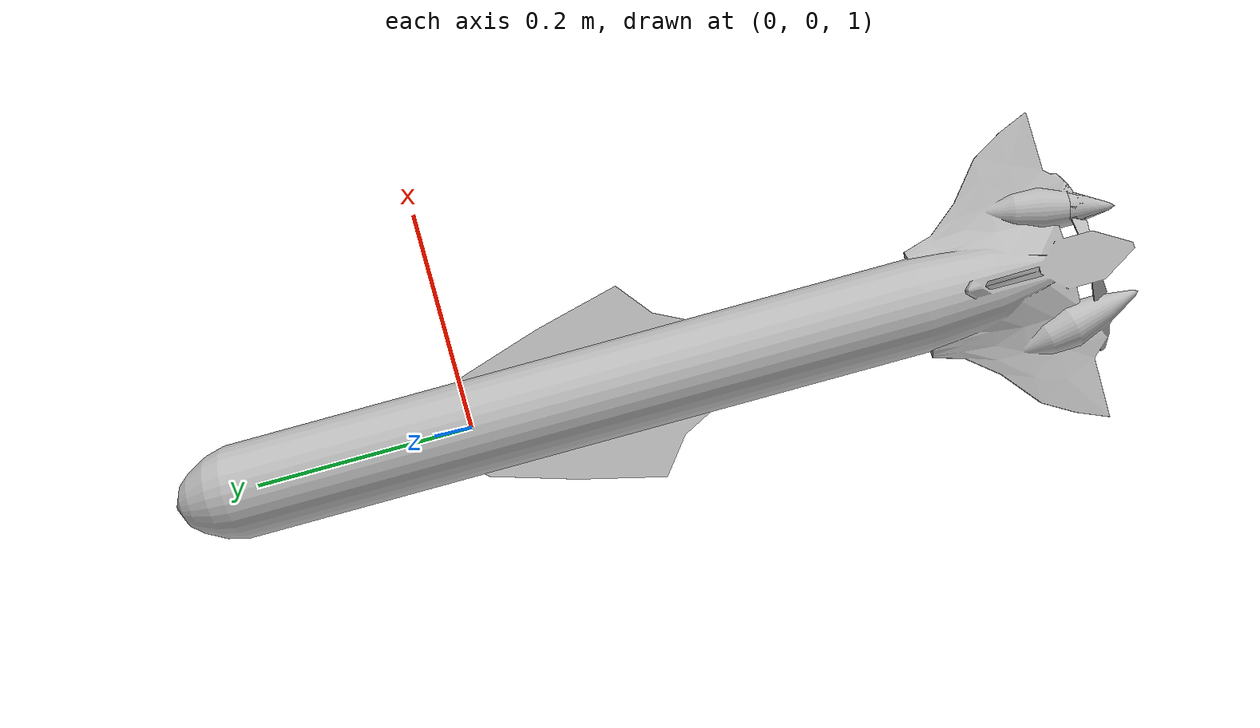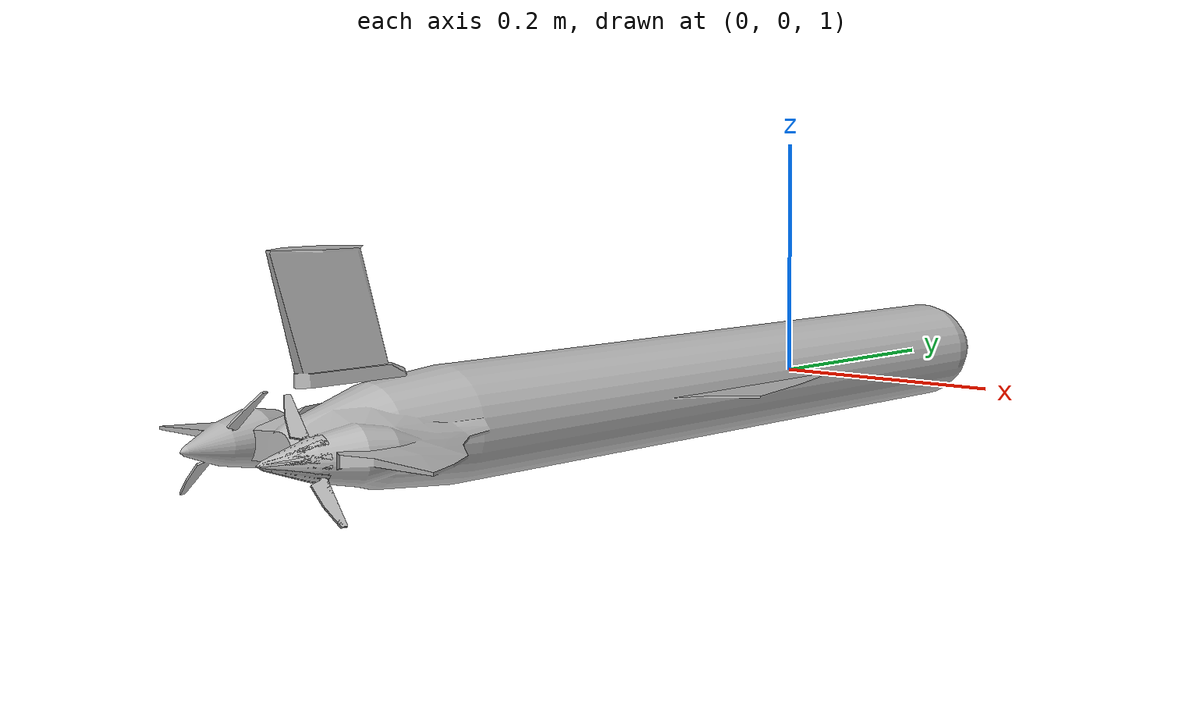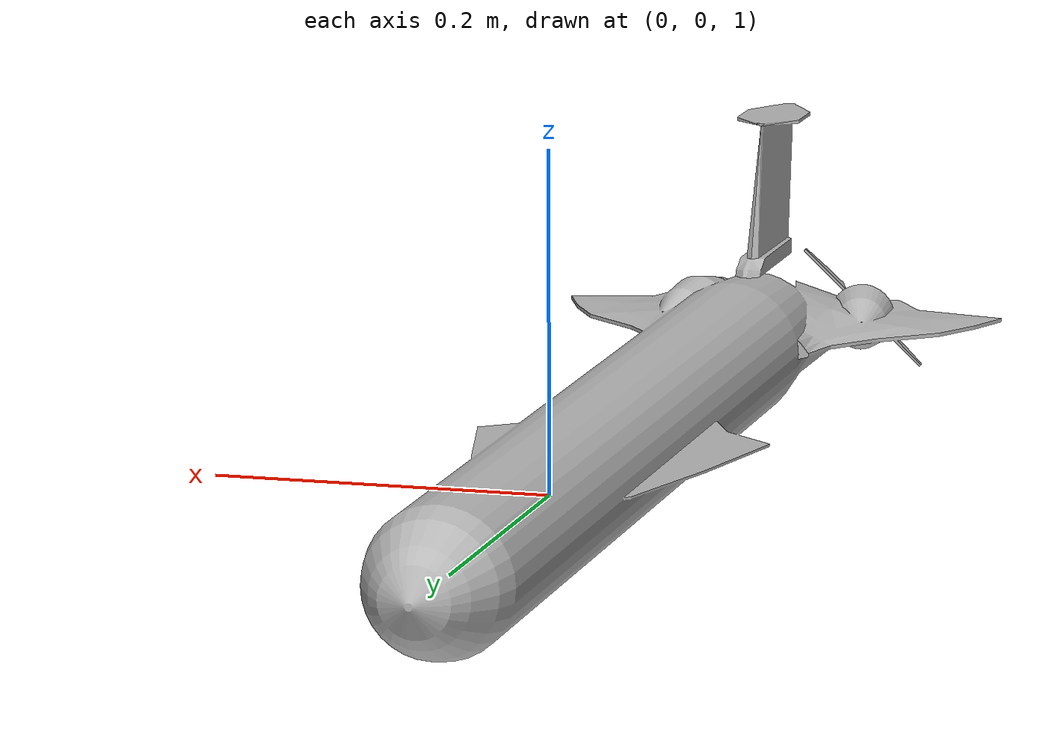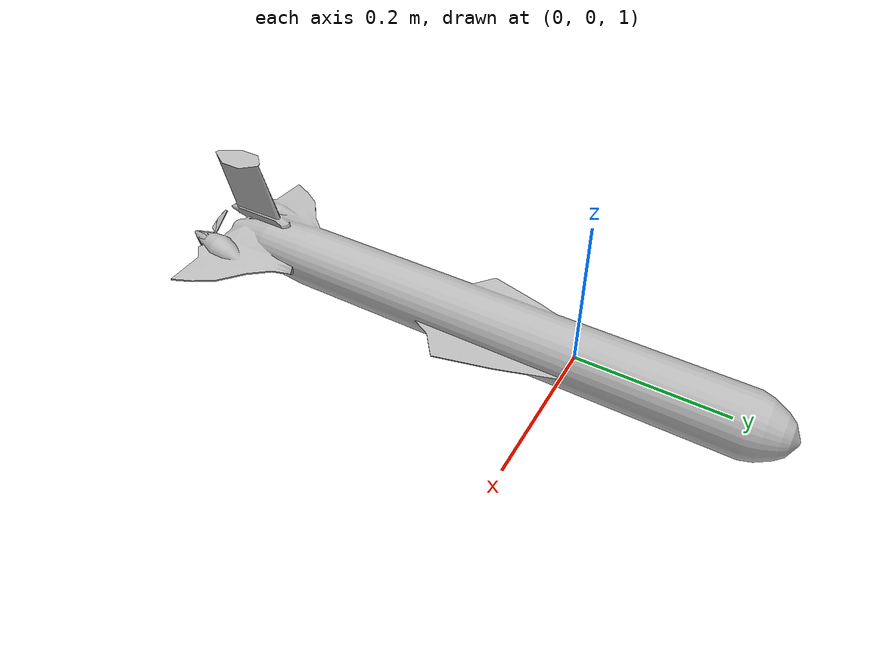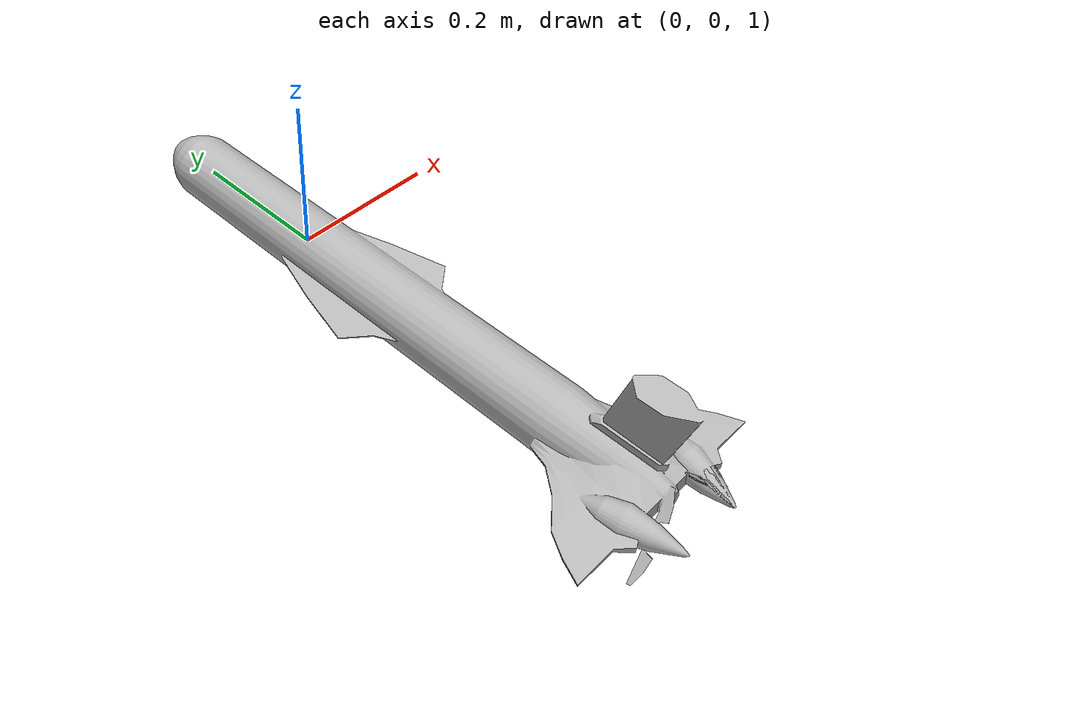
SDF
<?xml version="1.0"?>
<sdf version="1.6">
  <model name="glider_hybrid_whoi">
    <static>true</static>
    <link name="base_link">
      <visual name="visual">
        <pose>0 0 1 0 0 0</pose>
        <geometry>
          <mesh>
            <scale>1.0 1.0 1.0</scale>
            <uri>model://glider_hybrid_whoi/mesh/glider_hybrid_whoi_body.dae</uri>
          </mesh>
        </geometry>
      </visual>
      <collision name="collision">
        <pose>0 0 1 0 0 0</pose>
        <geometry>
          <mesh>
            <scale>1.2 1.2 1.2</scale>
            <uri>model://glider_hybrid_whoi/mesh/glider_hybrid_whoi_collision.dae</uri>
          </mesh>
        </geometry>
      </collision>
    </link>
    <link name="right_propeller_link">
      <visual name="visual">
        <pose>0 0 1 0 0 0</pose>
        <geometry>
          <mesh>
            <scale>1.0 1.0 1.0</scale>
            <uri>model://glider_hybrid_whoi/mesh/glider_hybrid_whoi_right_propeller.dae</uri>
          </mesh>
        </geometry>
      </visual>
    </link>
    <link name="left_propeller_link">
      <visual name="visual">
        <pose>0 0 1 0 0 0</pose>
        <geometry>
          <mesh>
            <scale>1.0 1.0 1.0</scale>
            <uri>model://glider_hybrid_whoi/mesh/glider_hybrid_whoi_left_propeller.dae</uri>
          </mesh>
        </geometry>
      </visual>
    </link>
  </model>
</sdf>
